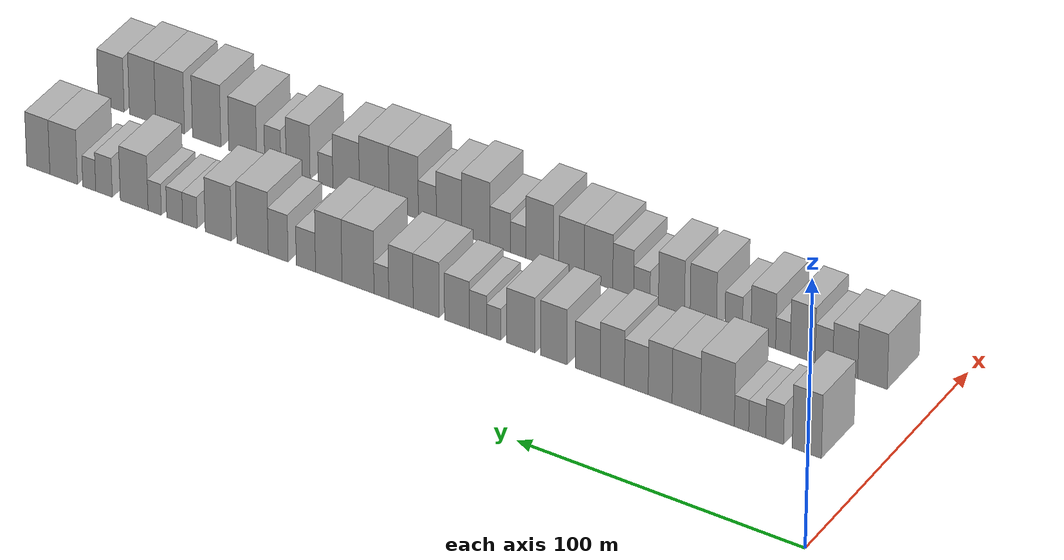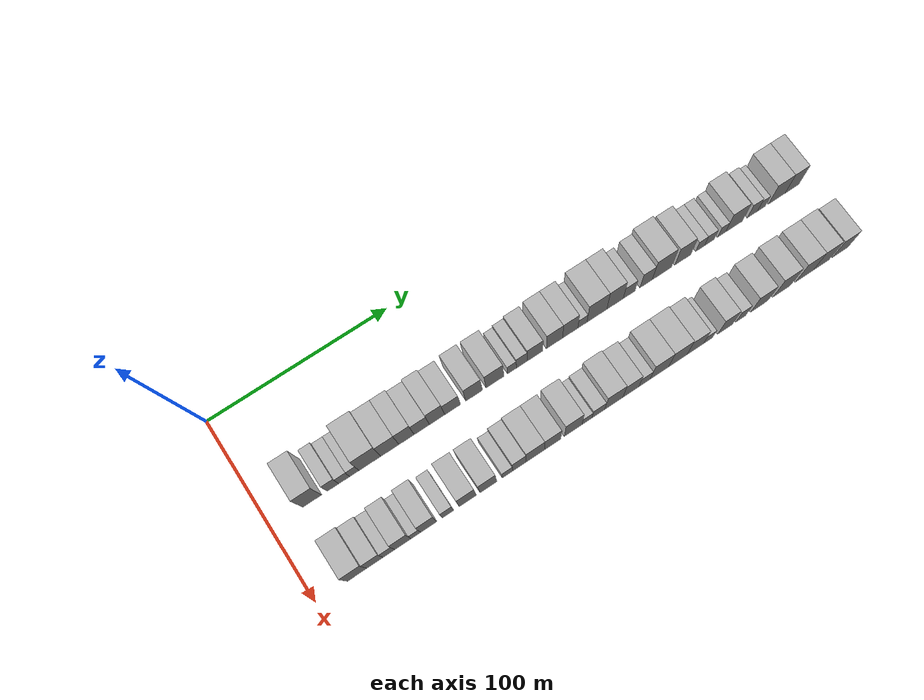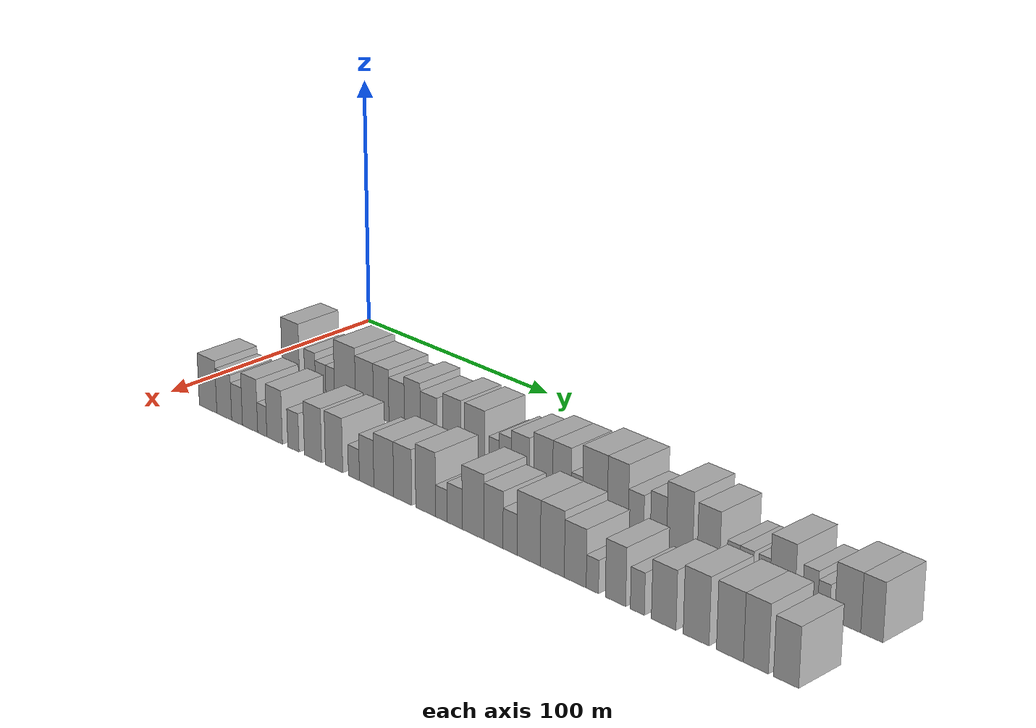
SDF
<sdf version="1.6">
 <world name="default">
  <model name="building_33">
   <static>1</static>
   <pose>50.0000 22.3238 0 0.000000 0.000000 0.000000</pose>
   <link name="link">
    <pose>0 0 12.00 0 0 0</pose>
    <collision name="collision"><geometry><box><size>20.0000 10.1171 24.0000</size></box></geometry></collision>
    <visual name="visual">
     <cast_shadows>0</cast_shadows>
     <geometry><box><size>20.0000 10.1171 24.0000</size></box></geometry>
     <material>
      <script>
       <uri>model://HANNAS_wall/materials/scripts</uri>
       <uri>model://HANNAS_wall/materials/textures</uri>
       <name>vrc/HANNAS_wall</name>
      </script>
     </material>
    </visual>
   </link>
  </model>
  <model name="building_34">
   <static>1</static>
   <pose>50.0000 33.4924 0 0.000000 0.000000 0.000000</pose>
   <link name="link">
    <pose>0 0 7.50 0 0 0</pose>
    <collision name="collision"><geometry><box><size>20.0000 6.2201 15.0000</size></box></geometry></collision>
    <visual name="visual">
     <cast_shadows>0</cast_shadows>
     <geometry><box><size>20.0000 6.2201 15.0000</size></box></geometry>
     <material>
      <script>
       <uri>model://HANNAS_wall/materials/scripts</uri>
       <uri>model://HANNAS_wall/materials/textures</uri>
       <name>vrc/HANNAS_wall</name>
      </script>
     </material>
    </visual>
   </link>
  </model>
  <model name="building_35">
   <static>1</static>
   <pose>50.0000 39.5580 0 0.000000 0.000000 0.000000</pose>
   <link name="link">
    <pose>0 0 6.00 0 0 0</pose>
    <collision name="collision"><geometry><box><size>20.0000 5.9111 12.0000</size></box></geometry></collision>
    <visual name="visual">
     <cast_shadows>0</cast_shadows>
     <geometry><box><size>20.0000 5.9111 12.0000</size></box></geometry>
     <material>
      <script>
       <uri>model://HANNAS_wall/materials/scripts</uri>
       <uri>model://HANNAS_wall/materials/textures</uri>
       <name>vrc/HANNAS_wall</name>
      </script>
     </material>
    </visual>
   </link>
  </model>
  <model name="building_36">
   <static>1</static>
   <pose>50.0000 45.0231 0 0.000000 0.000000 0.000000</pose>
   <link name="link">
    <pose>0 0 6.00 0 0 0</pose>
    <collision name="collision"><geometry><box><size>20.0000 5.0190 12.0000</size></box></geometry></collision>
    <visual name="visual">
     <cast_shadows>0</cast_shadows>
     <geometry><box><size>20.0000 5.0190 12.0000</size></box></geometry>
     <material>
      <script>
       <uri>model://HANNAS_wall/materials/scripts</uri>
       <uri>model://HANNAS_wall/materials/textures</uri>
       <name>vrc/HANNAS_wall</name>
      </script>
     </material>
    </visual>
   </link>
  </model>
  <model name="building_37">
   <static>1</static>
   <pose>50.0000 53.4516 0 0.000000 0.000000 0.000000</pose>
   <link name="link">
    <pose>0 0 12.00 0 0 0</pose>
    <collision name="collision"><geometry><box><size>20.0000 11.8379 24.0000</size></box></geometry></collision>
    <visual name="visual">
     <cast_shadows>0</cast_shadows>
     <geometry><box><size>20.0000 11.8379 24.0000</size></box></geometry>
     <material>
      <script>
       <uri>model://HANNAS_wall/materials/scripts</uri>
       <uri>model://HANNAS_wall/materials/textures</uri>
       <name>vrc/HANNAS_wall</name>
      </script>
     </material>
    </visual>
   </link>
  </model>
  <model name="building_38">
   <static>1</static>
   <pose>50.0000 64.3555 0 0.000000 0.000000 0.000000</pose>
   <link name="link">
    <pose>0 0 10.50 0 0 0</pose>
    <collision name="collision"><geometry><box><size>20.0000 9.9698 21.0000</size></box></geometry></collision>
    <visual name="visual">
     <cast_shadows>0</cast_shadows>
     <geometry><box><size>20.0000 9.9698 21.0000</size></box></geometry>
     <material>
      <script>
       <uri>model://HANNAS_wall/materials/scripts</uri>
       <uri>model://HANNAS_wall/materials/textures</uri>
       <name>vrc/HANNAS_wall</name>
      </script>
     </material>
    </visual>
   </link>
  </model>
  <model name="building_39">
   <static>1</static>
   <pose>50.0000 73.5436 0 0.000000 0.000000 0.000000</pose>
   <link name="link">
    <pose>0 0 10.50 0 0 0</pose>
    <collision name="collision"><geometry><box><size>20.0000 8.4065 21.0000</size></box></geometry></collision>
    <visual name="visual">
     <cast_shadows>0</cast_shadows>
     <geometry><box><size>20.0000 8.4065 21.0000</size></box></geometry>
     <material>
      <script>
       <uri>model://HANNAS_wall/materials/scripts</uri>
       <uri>model://HANNAS_wall/materials/textures</uri>
       <name>vrc/HANNAS_wall</name>
      </script>
     </material>
    </visual>
   </link>
  </model>
  <model name="building_40">
   <static>1</static>
   <pose>50.0000 81.9628 0 0.000000 0.000000 0.000000</pose>
   <link name="link">
    <pose>0 0 9.00 0 0 0</pose>
    <collision name="collision"><geometry><box><size>20.0000 8.4319 18.0000</size></box></geometry></collision>
    <visual name="visual">
     <cast_shadows>0</cast_shadows>
     <geometry><box><size>20.0000 8.4319 18.0000</size></box></geometry>
     <material>
      <script>
       <uri>model://HANNAS_wall/materials/scripts</uri>
       <uri>model://HANNAS_wall/materials/textures</uri>
       <name>vrc/HANNAS_wall</name>
      </script>
     </material>
    </visual>
   </link>
  </model>
  <model name="building_41">
   <static>1</static>
   <pose>50.0000 90.4274 0 0.000000 0.000000 0.000000</pose>
   <link name="link">
    <pose>0 0 10.50 0 0 0</pose>
    <collision name="collision"><geometry><box><size>20.0000 8.4972 21.0000</size></box></geometry></collision>
    <visual name="visual">
     <cast_shadows>0</cast_shadows>
     <geometry><box><size>20.0000 8.4972 21.0000</size></box></geometry>
     <material>
      <script>
       <uri>model://HANNAS_wall/materials/scripts</uri>
       <uri>model://HANNAS_wall/materials/textures</uri>
       <name>vrc/HANNAS_wall</name>
      </script>
     </material>
    </visual>
   </link>
  </model>
  <model name="building_42">
   <static>1</static>
   <pose>50.0000 99.1156 0 0.000000 0.000000 0.000000</pose>
   <link name="link">
    <pose>0 0 9.00 0 0 0</pose>
    <collision name="collision"><geometry><box><size>20.0000 8.8792 18.0000</size></box></geometry></collision>
    <visual name="visual">
     <cast_shadows>0</cast_shadows>
     <geometry><box><size>20.0000 8.8792 18.0000</size></box></geometry>
     <material>
      <script>
       <uri>model://HANNAS_wall/materials/scripts</uri>
       <uri>model://HANNAS_wall/materials/textures</uri>
       <name>vrc/HANNAS_wall</name>
      </script>
     </material>
    </visual>
   </link>
  </model>
  <model name="building_43">
   <static>1</static>
   <pose>50.0000 111.2433 0 0.000000 0.000000 0.000000</pose>
   <link name="link">
    <pose>0 0 10.50 0 0 0</pose>
    <collision name="collision"><geometry><box><size>20.0000 9.3763 21.0000</size></box></geometry></collision>
    <visual name="visual">
     <cast_shadows>0</cast_shadows>
     <geometry><box><size>20.0000 9.3763 21.0000</size></box></geometry>
     <material>
      <script>
       <uri>model://HANNAS_wall/materials/scripts</uri>
       <uri>model://HANNAS_wall/materials/textures</uri>
       <name>vrc/HANNAS_wall</name>
      </script>
     </material>
    </visual>
   </link>
  </model>
  <model name="building_44">
   <static>1</static>
   <pose>50.0000 123.0411 0 0.000000 0.000000 0.000000</pose>
   <link name="link">
    <pose>0 0 10.50 0 0 0</pose>
    <collision name="collision"><geometry><box><size>20.0000 10.2192 21.0000</size></box></geometry></collision>
    <visual name="visual">
     <cast_shadows>0</cast_shadows>
     <geometry><box><size>20.0000 10.2192 21.0000</size></box></geometry>
     <material>
      <script>
       <uri>model://HANNAS_wall/materials/scripts</uri>
       <uri>model://HANNAS_wall/materials/textures</uri>
       <name>vrc/HANNAS_wall</name>
      </script>
     </material>
    </visual>
   </link>
  </model>
  <model name="building_45">
   <static>1</static>
   <pose>50.0000 132.7010 0 0.000000 0.000000 0.000000</pose>
   <link name="link">
    <pose>0 0 6.00 0 0 0</pose>
    <collision name="collision"><geometry><box><size>20.0000 5.1006 12.0000</size></box></geometry></collision>
    <visual name="visual">
     <cast_shadows>0</cast_shadows>
     <geometry><box><size>20.0000 5.1006 12.0000</size></box></geometry>
     <material>
      <script>
       <uri>model://HANNAS_wall/materials/scripts</uri>
       <uri>model://HANNAS_wall/materials/textures</uri>
       <name>vrc/HANNAS_wall</name>
      </script>
     </material>
    </visual>
   </link>
  </model>
  <model name="building_46">
   <static>1</static>
   <pose>50.0000 138.3369 0 0.000000 0.000000 0.000000</pose>
   <link name="link">
    <pose>0 0 7.50 0 0 0</pose>
    <collision name="collision"><geometry><box><size>20.0000 6.1713 15.0000</size></box></geometry></collision>
    <visual name="visual">
     <cast_shadows>0</cast_shadows>
     <geometry><box><size>20.0000 6.1713 15.0000</size></box></geometry>
     <material>
      <script>
       <uri>model://HANNAS_wall/materials/scripts</uri>
       <uri>model://HANNAS_wall/materials/textures</uri>
       <name>vrc/HANNAS_wall</name>
      </script>
     </material>
    </visual>
   </link>
  </model>
  <model name="building_47">
   <static>1</static>
   <pose>50.0000 145.9093 0 0.000000 0.000000 0.000000</pose>
   <link name="link">
    <pose>0 0 9.00 0 0 0</pose>
    <collision name="collision"><geometry><box><size>20.0000 8.9736 18.0000</size></box></geometry></collision>
    <visual name="visual">
     <cast_shadows>0</cast_shadows>
     <geometry><box><size>20.0000 8.9736 18.0000</size></box></geometry>
     <material>
      <script>
       <uri>model://HANNAS_wall/materials/scripts</uri>
       <uri>model://HANNAS_wall/materials/textures</uri>
       <name>vrc/HANNAS_wall</name>
      </script>
     </material>
    </visual>
   </link>
  </model>
  <model name="building_48">
   <static>1</static>
   <pose>50.0000 157.0753 0 0.000000 0.000000 0.000000</pose>
   <link name="link">
    <pose>0 0 10.50 0 0 0</pose>
    <collision name="collision"><geometry><box><size>20.0000 9.3584 21.0000</size></box></geometry></collision>
    <visual name="visual">
     <cast_shadows>0</cast_shadows>
     <geometry><box><size>20.0000 9.3584 21.0000</size></box></geometry>
     <material>
      <script>
       <uri>model://HANNAS_wall/materials/scripts</uri>
       <uri>model://HANNAS_wall/materials/textures</uri>
       <name>vrc/HANNAS_wall</name>
      </script>
     </material>
    </visual>
   </link>
  </model>
  <model name="building_49">
   <static>1</static>
   <pose>50.0000 166.1852 0 0.000000 0.000000 0.000000</pose>
   <link name="link">
    <pose>0 0 10.50 0 0 0</pose>
    <collision name="collision"><geometry><box><size>20.0000 8.8613 21.0000</size></box></geometry></collision>
    <visual name="visual">
     <cast_shadows>0</cast_shadows>
     <geometry><box><size>20.0000 8.8613 21.0000</size></box></geometry>
     <material>
      <script>
       <uri>model://HANNAS_wall/materials/scripts</uri>
       <uri>model://HANNAS_wall/materials/textures</uri>
       <name>vrc/HANNAS_wall</name>
      </script>
     </material>
    </visual>
   </link>
  </model>
  <model name="building_50">
   <static>1</static>
   <pose>50.0000 173.2969 0 0.000000 0.000000 0.000000</pose>
   <link name="link">
    <pose>0 0 6.00 0 0 0</pose>
    <collision name="collision"><geometry><box><size>20.0000 5.3621 12.0000</size></box></geometry></collision>
    <visual name="visual">
     <cast_shadows>0</cast_shadows>
     <geometry><box><size>20.0000 5.3621 12.0000</size></box></geometry>
     <material>
      <script>
       <uri>model://HANNAS_wall/materials/scripts</uri>
       <uri>model://HANNAS_wall/materials/textures</uri>
       <name>vrc/HANNAS_wall</name>
      </script>
     </material>
    </visual>
   </link>
  </model>
  <model name="building_51">
   <static>1</static>
   <pose>50.0000 181.8073 0 0.000000 0.000000 0.000000</pose>
   <link name="link">
    <pose>0 0 12.00 0 0 0</pose>
    <collision name="collision"><geometry><box><size>20.0000 11.6588 24.0000</size></box></geometry></collision>
    <visual name="visual">
     <cast_shadows>0</cast_shadows>
     <geometry><box><size>20.0000 11.6588 24.0000</size></box></geometry>
     <material>
      <script>
       <uri>model://HANNAS_wall/materials/scripts</uri>
       <uri>model://HANNAS_wall/materials/textures</uri>
       <name>vrc/HANNAS_wall</name>
      </script>
     </material>
    </visual>
   </link>
  </model>
  <model name="building_52">
   <static>1</static>
   <pose>50.0000 192.4684 0 0.000000 0.000000 0.000000</pose>
   <link name="link">
    <pose>0 0 12.00 0 0 0</pose>
    <collision name="collision"><geometry><box><size>20.0000 9.6633 24.0000</size></box></geometry></collision>
    <visual name="visual">
     <cast_shadows>0</cast_shadows>
     <geometry><box><size>20.0000 9.6633 24.0000</size></box></geometry>
     <material>
      <script>
       <uri>model://HANNAS_wall/materials/scripts</uri>
       <uri>model://HANNAS_wall/materials/textures</uri>
       <name>vrc/HANNAS_wall</name>
      </script>
     </material>
    </visual>
   </link>
  </model>
  <model name="building_53">
   <static>1</static>
   <pose>50.0000 200.8308 0 0.000000 0.000000 0.000000</pose>
   <link name="link">
    <pose>0 0 7.50 0 0 0</pose>
    <collision name="collision"><geometry><box><size>20.0000 7.0615 15.0000</size></box></geometry></collision>
    <visual name="visual">
     <cast_shadows>0</cast_shadows>
     <geometry><box><size>20.0000 7.0615 15.0000</size></box></geometry>
     <material>
      <script>
       <uri>model://HANNAS_wall/materials/scripts</uri>
       <uri>model://HANNAS_wall/materials/textures</uri>
       <name>vrc/HANNAS_wall</name>
      </script>
     </material>
    </visual>
   </link>
  </model>
  <model name="building_54">
   <static>1</static>
   <pose>50.0000 210.9991 0 0.000000 0.000000 0.000000</pose>
   <link name="link">
    <pose>0 0 9.00 0 0 0</pose>
    <collision name="collision"><geometry><box><size>20.0000 7.2751 18.0000</size></box></geometry></collision>
    <visual name="visual">
     <cast_shadows>0</cast_shadows>
     <geometry><box><size>20.0000 7.2751 18.0000</size></box></geometry>
     <material>
      <script>
       <uri>model://HANNAS_wall/materials/scripts</uri>
       <uri>model://HANNAS_wall/materials/textures</uri>
       <name>vrc/HANNAS_wall</name>
      </script>
     </material>
    </visual>
   </link>
  </model>
  <model name="building_55">
   <static>1</static>
   <pose>50.0000 220.4315 0 0.000000 0.000000 0.000000</pose>
   <link name="link">
    <pose>0 0 12.00 0 0 0</pose>
    <collision name="collision"><geometry><box><size>20.0000 11.5898 24.0000</size></box></geometry></collision>
    <visual name="visual">
     <cast_shadows>0</cast_shadows>
     <geometry><box><size>20.0000 11.5898 24.0000</size></box></geometry>
     <material>
      <script>
       <uri>model://HANNAS_wall/materials/scripts</uri>
       <uri>model://HANNAS_wall/materials/textures</uri>
       <name>vrc/HANNAS_wall</name>
      </script>
     </material>
    </visual>
   </link>
  </model>
  <model name="building_56">
   <static>1</static>
   <pose>50.0000 233.0825 0 0.000000 0.000000 0.000000</pose>
   <link name="link">
    <pose>0 0 10.50 0 0 0</pose>
    <collision name="collision"><geometry><box><size>20.0000 9.7122 21.0000</size></box></geometry></collision>
    <visual name="visual">
     <cast_shadows>0</cast_shadows>
     <geometry><box><size>20.0000 9.7122 21.0000</size></box></geometry>
     <material>
      <script>
       <uri>model://HANNAS_wall/materials/scripts</uri>
       <uri>model://HANNAS_wall/materials/textures</uri>
       <name>vrc/HANNAS_wall</name>
      </script>
     </material>
    </visual>
   </link>
  </model>
  <model name="building_57">
   <static>1</static>
   <pose>50.0000 243.6332 0 0.000000 0.000000 0.000000</pose>
   <link name="link">
    <pose>0 0 6.00 0 0 0</pose>
    <collision name="collision"><geometry><box><size>20.0000 5.3892 12.0000</size></box></geometry></collision>
    <visual name="visual">
     <cast_shadows>0</cast_shadows>
     <geometry><box><size>20.0000 5.3892 12.0000</size></box></geometry>
     <material>
      <script>
       <uri>model://HANNAS_wall/materials/scripts</uri>
       <uri>model://HANNAS_wall/materials/textures</uri>
       <name>vrc/HANNAS_wall</name>
      </script>
     </material>
    </visual>
   </link>
  </model>
  <model name="building_58">
   <static>1</static>
   <pose>50.0000 249.2939 0 0.000000 0.000000 0.000000</pose>
   <link name="link">
    <pose>0 0 6.00 0 0 0</pose>
    <collision name="collision"><geometry><box><size>20.0000 5.9321 12.0000</size></box></geometry></collision>
    <visual name="visual">
     <cast_shadows>0</cast_shadows>
     <geometry><box><size>20.0000 5.9321 12.0000</size></box></geometry>
     <material>
      <script>
       <uri>model://HANNAS_wall/materials/scripts</uri>
       <uri>model://HANNAS_wall/materials/textures</uri>
       <name>vrc/HANNAS_wall</name>
      </script>
     </material>
    </visual>
   </link>
  </model>
  <model name="building_59">
   <static>1</static>
   <pose>50.0000 256.7350 0 0.000000 0.000000 0.000000</pose>
   <link name="link">
    <pose>0 0 6.00 0 0 0</pose>
    <collision name="collision"><geometry><box><size>20.0000 4.9502 12.0000</size></box></geometry></collision>
    <visual name="visual">
     <cast_shadows>0</cast_shadows>
     <geometry><box><size>20.0000 4.9502 12.0000</size></box></geometry>
     <material>
      <script>
       <uri>model://HANNAS_wall/materials/scripts</uri>
       <uri>model://HANNAS_wall/materials/textures</uri>
       <name>vrc/HANNAS_wall</name>
      </script>
     </material>
    </visual>
   </link>
  </model>
  <model name="building_60">
   <static>1</static>
   <pose>50.0000 264.3996 0 0.000000 0.000000 0.000000</pose>
   <link name="link">
    <pose>0 0 10.50 0 0 0</pose>
    <collision name="collision"><geometry><box><size>20.0000 10.3790 21.0000</size></box></geometry></collision>
    <visual name="visual">
     <cast_shadows>0</cast_shadows>
     <geometry><box><size>20.0000 10.3790 21.0000</size></box></geometry>
     <material>
      <script>
       <uri>model://HANNAS_wall/materials/scripts</uri>
       <uri>model://HANNAS_wall/materials/textures</uri>
       <name>vrc/HANNAS_wall</name>
      </script>
     </material>
    </visual>
   </link>
  </model>
  <model name="building_61">
   <static>1</static>
   <pose>50.0000 275.6961 0 0.000000 0.000000 0.000000</pose>
   <link name="link">
    <pose>0 0 7.50 0 0 0</pose>
    <collision name="collision"><geometry><box><size>20.0000 6.2138 15.0000</size></box></geometry></collision>
    <visual name="visual">
     <cast_shadows>0</cast_shadows>
     <geometry><box><size>20.0000 6.2138 15.0000</size></box></geometry>
     <material>
      <script>
       <uri>model://HANNAS_wall/materials/scripts</uri>
       <uri>model://HANNAS_wall/materials/textures</uri>
       <name>vrc/HANNAS_wall</name>
      </script>
     </material>
    </visual>
   </link>
  </model>
  <model name="building_62">
   <static>1</static>
   <pose>50.0000 281.2378 0 0.000000 0.000000 0.000000</pose>
   <link name="link">
    <pose>0 0 6.00 0 0 0</pose>
    <collision name="collision"><geometry><box><size>20.0000 4.8697 12.0000</size></box></geometry></collision>
    <visual name="visual">
     <cast_shadows>0</cast_shadows>
     <geometry><box><size>20.0000 4.8697 12.0000</size></box></geometry>
     <material>
      <script>
       <uri>model://HANNAS_wall/materials/scripts</uri>
       <uri>model://HANNAS_wall/materials/textures</uri>
       <name>vrc/HANNAS_wall</name>
      </script>
     </material>
    </visual>
   </link>
  </model>
  <model name="building_63">
   <static>1</static>
   <pose>50.0000 290.8701 0 0.000000 0.000000 0.000000</pose>
   <link name="link">
    <pose>0 0 10.50 0 0 0</pose>
    <collision name="collision"><geometry><box><size>20.0000 10.3950 21.0000</size></box></geometry></collision>
    <visual name="visual">
     <cast_shadows>0</cast_shadows>
     <geometry><box><size>20.0000 10.3950 21.0000</size></box></geometry>
     <material>
      <script>
       <uri>model://HANNAS_wall/materials/scripts</uri>
       <uri>model://HANNAS_wall/materials/textures</uri>
       <name>vrc/HANNAS_wall</name>
      </script>
     </material>
    </visual>
   </link>
  </model>
  <model name="building_64">
   <static>1</static>
   <pose>50.0000 300.4305 0 0.000000 0.000000 0.000000</pose>
   <link name="link">
    <pose>0 0 10.50 0 0 0</pose>
    <collision name="collision"><geometry><box><size>20.0000 8.7257 21.0000</size></box></geometry></collision>
    <visual name="visual">
     <cast_shadows>0</cast_shadows>
     <geometry><box><size>20.0000 8.7257 21.0000</size></box></geometry>
     <material>
      <script>
       <uri>model://HANNAS_wall/materials/scripts</uri>
       <uri>model://HANNAS_wall/materials/textures</uri>
       <name>vrc/HANNAS_wall</name>
      </script>
     </material>
    </visual>
   </link>
  </model>
  <model name="building_94">
   <static>1</static>
   <pose>90.0000 22.1543 0 0.000000 0.000000 0.000000</pose>
   <link name="link">
    <pose>0 0 10.50 0 0 0</pose>
    <collision name="collision"><geometry><box><size>20.0000 10.3219 21.0000</size></box></geometry></collision>
    <visual name="visual">
     <cast_shadows>0</cast_shadows>
     <geometry><box><size>20.0000 10.3219 21.0000</size></box></geometry>
     <material>
      <script>
       <uri>model://HANNAS_wall/materials/scripts</uri>
       <uri>model://HANNAS_wall/materials/textures</uri>
       <name>vrc/HANNAS_wall</name>
      </script>
     </material>
    </visual>
   </link>
  </model>
  <model name="building_95">
   <static>1</static>
   <pose>90.0000 31.6559 0 0.000000 0.000000 0.000000</pose>
   <link name="link">
    <pose>0 0 9.00 0 0 0</pose>
    <collision name="collision"><geometry><box><size>20.0000 8.6814 18.0000</size></box></geometry></collision>
    <visual name="visual">
     <cast_shadows>0</cast_shadows>
     <geometry><box><size>20.0000 8.6814 18.0000</size></box></geometry>
     <material>
      <script>
       <uri>model://HANNAS_wall/materials/scripts</uri>
       <uri>model://HANNAS_wall/materials/textures</uri>
       <name>vrc/HANNAS_wall</name>
      </script>
     </material>
    </visual>
   </link>
  </model>
  <model name="building_96">
   <static>1</static>
   <pose>90.0000 39.1072 0 0.000000 0.000000 0.000000</pose>
   <link name="link">
    <pose>0 0 7.50 0 0 0</pose>
    <collision name="collision"><geometry><box><size>20.0000 6.2211 15.0000</size></box></geometry></collision>
    <visual name="visual">
     <cast_shadows>0</cast_shadows>
     <geometry><box><size>20.0000 6.2211 15.0000</size></box></geometry>
     <material>
      <script>
       <uri>model://HANNAS_wall/materials/scripts</uri>
       <uri>model://HANNAS_wall/materials/textures</uri>
       <name>vrc/HANNAS_wall</name>
      </script>
     </material>
    </visual>
   </link>
  </model>
  <model name="building_97">
   <static>1</static>
   <pose>90.0000 46.5713 0 0.000000 0.000000 0.000000</pose>
   <link name="link">
    <pose>0 0 10.50 0 0 0</pose>
    <collision name="collision"><geometry><box><size>20.0000 8.7071 21.0000</size></box></geometry></collision>
    <visual name="visual">
     <cast_shadows>0</cast_shadows>
     <geometry><box><size>20.0000 8.7071 21.0000</size></box></geometry>
     <material>
      <script>
       <uri>model://HANNAS_wall/materials/scripts</uri>
       <uri>model://HANNAS_wall/materials/textures</uri>
       <name>vrc/HANNAS_wall</name>
      </script>
     </material>
    </visual>
   </link>
  </model>
  <model name="building_98">
   <static>1</static>
   <pose>90.0000 53.5038 0 0.000000 0.000000 0.000000</pose>
   <link name="link">
    <pose>0 0 6.00 0 0 0</pose>
    <collision name="collision"><geometry><box><size>20.0000 5.1580 12.0000</size></box></geometry></collision>
    <visual name="visual">
     <cast_shadows>0</cast_shadows>
     <geometry><box><size>20.0000 5.1580 12.0000</size></box></geometry>
     <material>
      <script>
       <uri>model://HANNAS_wall/materials/scripts</uri>
       <uri>model://HANNAS_wall/materials/textures</uri>
       <name>vrc/HANNAS_wall</name>
      </script>
     </material>
    </visual>
   </link>
  </model>
  <model name="building_99">
   <static>1</static>
   <pose>90.0000 60.4546 0 0.000000 0.000000 0.000000</pose>
   <link name="link">
    <pose>0 0 10.50 0 0 0</pose>
    <collision name="collision"><geometry><box><size>20.0000 8.7435 21.0000</size></box></geometry></collision>
    <visual name="visual">
     <cast_shadows>0</cast_shadows>
     <geometry><box><size>20.0000 8.7435 21.0000</size></box></geometry>
     <material>
      <script>
       <uri>model://HANNAS_wall/materials/scripts</uri>
       <uri>model://HANNAS_wall/materials/textures</uri>
       <name>vrc/HANNAS_wall</name>
      </script>
     </material>
    </visual>
   </link>
  </model>
  <model name="building_100">
   <static>1</static>
   <pose>90.0000 70.9182 0 0.000000 0.000000 0.000000</pose>
   <link name="link">
    <pose>0 0 7.50 0 0 0</pose>
    <collision name="collision"><geometry><box><size>20.0000 6.1838 15.0000</size></box></geometry></collision>
    <visual name="visual">
     <cast_shadows>0</cast_shadows>
     <geometry><box><size>20.0000 6.1838 15.0000</size></box></geometry>
     <material>
      <script>
       <uri>model://HANNAS_wall/materials/scripts</uri>
       <uri>model://HANNAS_wall/materials/textures</uri>
       <name>vrc/HANNAS_wall</name>
      </script>
     </material>
    </visual>
   </link>
  </model>
  <model name="building_101">
   <static>1</static>
   <pose>90.0000 81.7012 0 0.000000 0.000000 0.000000</pose>
   <link name="link">
    <pose>0 0 10.50 0 0 0</pose>
    <collision name="collision"><geometry><box><size>20.0000 9.3822 21.0000</size></box></geometry></collision>
    <visual name="visual">
     <cast_shadows>0</cast_shadows>
     <geometry><box><size>20.0000 9.3822 21.0000</size></box></geometry>
     <material>
      <script>
       <uri>model://HANNAS_wall/materials/scripts</uri>
       <uri>model://HANNAS_wall/materials/textures</uri>
       <name>vrc/HANNAS_wall</name>
      </script>
     </material>
    </visual>
   </link>
  </model>
  <model name="building_102">
   <static>1</static>
   <pose>90.0000 93.0351 0 0.000000 0.000000 0.000000</pose>
   <link name="link">
    <pose>0 0 10.50 0 0 0</pose>
    <collision name="collision"><geometry><box><size>20.0000 9.2855 21.0000</size></box></geometry></collision>
    <visual name="visual">
     <cast_shadows>0</cast_shadows>
     <geometry><box><size>20.0000 9.2855 21.0000</size></box></geometry>
     <material>
      <script>
       <uri>model://HANNAS_wall/materials/scripts</uri>
       <uri>model://HANNAS_wall/materials/textures</uri>
       <name>vrc/HANNAS_wall</name>
      </script>
     </material>
    </visual>
   </link>
  </model>
  <model name="building_103">
   <static>1</static>
   <pose>90.0000 103.5858 0 0.000000 0.000000 0.000000</pose>
   <link name="link">
    <pose>0 0 6.00 0 0 0</pose>
    <collision name="collision"><geometry><box><size>20.0000 5.8159 12.0000</size></box></geometry></collision>
    <visual name="visual">
     <cast_shadows>0</cast_shadows>
     <geometry><box><size>20.0000 5.8159 12.0000</size></box></geometry>
     <material>
      <script>
       <uri>model://HANNAS_wall/materials/scripts</uri>
       <uri>model://HANNAS_wall/materials/textures</uri>
       <name>vrc/HANNAS_wall</name>
      </script>
     </material>
    </visual>
   </link>
  </model>
  <model name="building_104">
   <static>1</static>
   <pose>90.0000 110.2608 0 0.000000 0.000000 0.000000</pose>
   <link name="link">
    <pose>0 0 9.00 0 0 0</pose>
    <collision name="collision"><geometry><box><size>20.0000 7.5341 18.0000</size></box></geometry></collision>
    <visual name="visual">
     <cast_shadows>0</cast_shadows>
     <geometry><box><size>20.0000 7.5341 18.0000</size></box></geometry>
     <material>
      <script>
       <uri>model://HANNAS_wall/materials/scripts</uri>
       <uri>model://HANNAS_wall/materials/textures</uri>
       <name>vrc/HANNAS_wall</name>
      </script>
     </material>
    </visual>
   </link>
  </model>
  <model name="building_105">
   <static>1</static>
   <pose>90.0000 119.1474 0 0.000000 0.000000 0.000000</pose>
   <link name="link">
    <pose>0 0 10.50 0 0 0</pose>
    <collision name="collision"><geometry><box><size>20.0000 10.2391 21.0000</size></box></geometry></collision>
    <visual name="visual">
     <cast_shadows>0</cast_shadows>
     <geometry><box><size>20.0000 10.2391 21.0000</size></box></geometry>
     <material>
      <script>
       <uri>model://HANNAS_wall/materials/scripts</uri>
       <uri>model://HANNAS_wall/materials/textures</uri>
       <name>vrc/HANNAS_wall</name>
      </script>
     </material>
    </visual>
   </link>
  </model>
  <model name="building_106">
   <static>1</static>
   <pose>90.0000 128.8539 0 0.000000 0.000000 0.000000</pose>
   <link name="link">
    <pose>0 0 10.50 0 0 0</pose>
    <collision name="collision"><geometry><box><size>20.0000 9.1737 21.0000</size></box></geometry></collision>
    <visual name="visual">
     <cast_shadows>0</cast_shadows>
     <geometry><box><size>20.0000 9.1737 21.0000</size></box></geometry>
     <material>
      <script>
       <uri>model://HANNAS_wall/materials/scripts</uri>
       <uri>model://HANNAS_wall/materials/textures</uri>
       <name>vrc/HANNAS_wall</name>
      </script>
     </material>
    </visual>
   </link>
  </model>
  <model name="building_107">
   <static>1</static>
   <pose>90.0000 140.4076 0 0.000000 0.000000 0.000000</pose>
   <link name="link">
    <pose>0 0 12.00 0 0 0</pose>
    <collision name="collision"><geometry><box><size>20.0000 9.9339 24.0000</size></box></geometry></collision>
    <visual name="visual">
     <cast_shadows>0</cast_shadows>
     <geometry><box><size>20.0000 9.9339 24.0000</size></box></geometry>
     <material>
      <script>
       <uri>model://HANNAS_wall/materials/scripts</uri>
       <uri>model://HANNAS_wall/materials/textures</uri>
       <name>vrc/HANNAS_wall</name>
      </script>
     </material>
    </visual>
   </link>
  </model>
  <model name="building_108">
   <static>1</static>
   <pose>90.0000 148.2240 0 0.000000 0.000000 0.000000</pose>
   <link name="link">
    <pose>0 0 6.00 0 0 0</pose>
    <collision name="collision"><geometry><box><size>20.0000 5.6988 12.0000</size></box></geometry></collision>
    <visual name="visual">
     <cast_shadows>0</cast_shadows>
     <geometry><box><size>20.0000 5.6988 12.0000</size></box></geometry>
     <material>
      <script>
       <uri>model://HANNAS_wall/materials/scripts</uri>
       <uri>model://HANNAS_wall/materials/textures</uri>
       <name>vrc/HANNAS_wall</name>
      </script>
     </material>
    </visual>
   </link>
  </model>
  <model name="building_109">
   <static>1</static>
   <pose>90.0000 154.7300 0 0.000000 0.000000 0.000000</pose>
   <link name="link">
    <pose>0 0 7.50 0 0 0</pose>
    <collision name="collision"><geometry><box><size>20.0000 7.3132 15.0000</size></box></geometry></collision>
    <visual name="visual">
     <cast_shadows>0</cast_shadows>
     <geometry><box><size>20.0000 7.3132 15.0000</size></box></geometry>
     <material>
      <script>
       <uri>model://HANNAS_wall/materials/scripts</uri>
       <uri>model://HANNAS_wall/materials/textures</uri>
       <name>vrc/HANNAS_wall</name>
      </script>
     </material>
    </visual>
   </link>
  </model>
  <model name="building_110">
   <static>1</static>
   <pose>90.0000 163.5996 0 0.000000 0.000000 0.000000</pose>
   <link name="link">
    <pose>0 0 12.00 0 0 0</pose>
    <collision name="collision"><geometry><box><size>20.0000 10.4261 24.0000</size></box></geometry></collision>
    <visual name="visual">
     <cast_shadows>0</cast_shadows>
     <geometry><box><size>20.0000 10.4261 24.0000</size></box></geometry>
     <material>
      <script>
       <uri>model://HANNAS_wall/materials/scripts</uri>
       <uri>model://HANNAS_wall/materials/textures</uri>
       <name>vrc/HANNAS_wall</name>
      </script>
     </material>
    </visual>
   </link>
  </model>
  <model name="building_111">
   <static>1</static>
   <pose>90.0000 173.4190 0 0.000000 0.000000 0.000000</pose>
   <link name="link">
    <pose>0 0 10.50 0 0 0</pose>
    <collision name="collision"><geometry><box><size>20.0000 9.2127 21.0000</size></box></geometry></collision>
    <visual name="visual">
     <cast_shadows>0</cast_shadows>
     <geometry><box><size>20.0000 9.2127 21.0000</size></box></geometry>
     <material>
      <script>
       <uri>model://HANNAS_wall/materials/scripts</uri>
       <uri>model://HANNAS_wall/materials/textures</uri>
       <name>vrc/HANNAS_wall</name>
      </script>
     </material>
    </visual>
   </link>
  </model>
  <model name="building_112">
   <static>1</static>
   <pose>90.0000 181.3299 0 0.000000 0.000000 0.000000</pose>
   <link name="link">
    <pose>0 0 7.50 0 0 0</pose>
    <collision name="collision"><geometry><box><size>20.0000 6.6089 15.0000</size></box></geometry></collision>
    <visual name="visual">
     <cast_shadows>0</cast_shadows>
     <geometry><box><size>20.0000 6.6089 15.0000</size></box></geometry>
     <material>
      <script>
       <uri>model://HANNAS_wall/materials/scripts</uri>
       <uri>model://HANNAS_wall/materials/textures</uri>
       <name>vrc/HANNAS_wall</name>
      </script>
     </material>
    </visual>
   </link>
  </model>
  <model name="building_113">
   <static>1</static>
   <pose>90.0000 190.0261 0 0.000000 0.000000 0.000000</pose>
   <link name="link">
    <pose>0 0 12.00 0 0 0</pose>
    <collision name="collision"><geometry><box><size>20.0000 10.7835 24.0000</size></box></geometry></collision>
    <visual name="visual">
     <cast_shadows>0</cast_shadows>
     <geometry><box><size>20.0000 10.7835 24.0000</size></box></geometry>
     <material>
      <script>
       <uri>model://HANNAS_wall/materials/scripts</uri>
       <uri>model://HANNAS_wall/materials/textures</uri>
       <name>vrc/HANNAS_wall</name>
      </script>
     </material>
    </visual>
   </link>
  </model>
  <model name="building_114">
   <static>1</static>
   <pose>90.0000 200.8704 0 0.000000 0.000000 0.000000</pose>
   <link name="link">
    <pose>0 0 12.00 0 0 0</pose>
    <collision name="collision"><geometry><box><size>20.0000 10.9053 24.0000</size></box></geometry></collision>
    <visual name="visual">
     <cast_shadows>0</cast_shadows>
     <geometry><box><size>20.0000 10.9053 24.0000</size></box></geometry>
     <material>
      <script>
       <uri>model://HANNAS_wall/materials/scripts</uri>
       <uri>model://HANNAS_wall/materials/textures</uri>
       <name>vrc/HANNAS_wall</name>
      </script>
     </material>
    </visual>
   </link>
  </model>
  <model name="building_115">
   <static>1</static>
   <pose>90.0000 211.2293 0 0.000000 0.000000 0.000000</pose>
   <link name="link">
    <pose>0 0 10.50 0 0 0</pose>
    <collision name="collision"><geometry><box><size>20.0000 9.8126 21.0000</size></box></geometry></collision>
    <visual name="visual">
     <cast_shadows>0</cast_shadows>
     <geometry><box><size>20.0000 9.8126 21.0000</size></box></geometry>
     <material>
      <script>
       <uri>model://HANNAS_wall/materials/scripts</uri>
       <uri>model://HANNAS_wall/materials/textures</uri>
       <name>vrc/HANNAS_wall</name>
      </script>
     </material>
    </visual>
   </link>
  </model>
  <model name="building_116">
   <static>1</static>
   <pose>90.0000 218.8627 0 0.000000 0.000000 0.000000</pose>
   <link name="link">
    <pose>0 0 6.00 0 0 0</pose>
    <collision name="collision"><geometry><box><size>20.0000 5.4541 12.0000</size></box></geometry></collision>
    <visual name="visual">
     <cast_shadows>0</cast_shadows>
     <geometry><box><size>20.0000 5.4541 12.0000</size></box></geometry>
     <material>
      <script>
       <uri>model://HANNAS_wall/materials/scripts</uri>
       <uri>model://HANNAS_wall/materials/textures</uri>
       <name>vrc/HANNAS_wall</name>
      </script>
     </material>
    </visual>
   </link>
  </model>
  <model name="building_117">
   <static>1</static>
   <pose>90.0000 229.0365 0 0.000000 0.000000 0.000000</pose>
   <link name="link">
    <pose>0 0 10.50 0 0 0</pose>
    <collision name="collision"><geometry><box><size>20.0000 8.8935 21.0000</size></box></geometry></collision>
    <visual name="visual">
     <cast_shadows>0</cast_shadows>
     <geometry><box><size>20.0000 8.8935 21.0000</size></box></geometry>
     <material>
      <script>
       <uri>model://HANNAS_wall/materials/scripts</uri>
       <uri>model://HANNAS_wall/materials/textures</uri>
       <name>vrc/HANNAS_wall</name>
      </script>
     </material>
    </visual>
   </link>
  </model>
  <model name="building_118">
   <static>1</static>
   <pose>90.0000 238.4951 0 0.000000 0.000000 0.000000</pose>
   <link name="link">
    <pose>0 0 7.50 0 0 0</pose>
    <collision name="collision"><geometry><box><size>20.0000 6.0237 15.0000</size></box></geometry></collision>
    <visual name="visual">
     <cast_shadows>0</cast_shadows>
     <geometry><box><size>20.0000 6.0237 15.0000</size></box></geometry>
     <material>
      <script>
       <uri>model://HANNAS_wall/materials/scripts</uri>
       <uri>model://HANNAS_wall/materials/textures</uri>
       <name>vrc/HANNAS_wall</name>
      </script>
     </material>
    </visual>
   </link>
  </model>
  <model name="building_119">
   <static>1</static>
   <pose>90.0000 249.7016 0 0.000000 0.000000 0.000000</pose>
   <link name="link">
    <pose>0 0 10.50 0 0 0</pose>
    <collision name="collision"><geometry><box><size>20.0000 10.3893 21.0000</size></box></geometry></collision>
    <visual name="visual">
     <cast_shadows>0</cast_shadows>
     <geometry><box><size>20.0000 10.3893 21.0000</size></box></geometry>
     <material>
      <script>
       <uri>model://HANNAS_wall/materials/scripts</uri>
       <uri>model://HANNAS_wall/materials/textures</uri>
       <name>vrc/HANNAS_wall</name>
      </script>
     </material>
    </visual>
   </link>
  </model>
  <model name="building_120">
   <static>1</static>
   <pose>90.0000 263.2394 0 0.000000 0.000000 0.000000</pose>
   <link name="link">
    <pose>0 0 12.00 0 0 0</pose>
    <collision name="collision"><geometry><box><size>20.0000 10.6863 24.0000</size></box></geometry></collision>
    <visual name="visual">
     <cast_shadows>0</cast_shadows>
     <geometry><box><size>20.0000 10.6863 24.0000</size></box></geometry>
     <material>
      <script>
       <uri>model://HANNAS_wall/materials/scripts</uri>
       <uri>model://HANNAS_wall/materials/textures</uri>
       <name>vrc/HANNAS_wall</name>
      </script>
     </material>
    </visual>
   </link>
  </model>
  <model name="building_121">
   <static>1</static>
   <pose>90.0000 277.0392 0 0.000000 0.000000 0.000000</pose>
   <link name="link">
    <pose>0 0 12.00 0 0 0</pose>
    <collision name="collision"><geometry><box><size>20.0000 10.9135 24.0000</size></box></geometry></collision>
    <visual name="visual">
     <cast_shadows>0</cast_shadows>
     <geometry><box><size>20.0000 10.9135 24.0000</size></box></geometry>
     <material>
      <script>
       <uri>model://HANNAS_wall/materials/scripts</uri>
       <uri>model://HANNAS_wall/materials/textures</uri>
       <name>vrc/HANNAS_wall</name>
      </script>
     </material>
    </visual>
   </link>
  </model>
  <model name="building_122">
   <static>1</static>
   <pose>90.0000 287.4589 0 0.000000 0.000000 0.000000</pose>
   <link name="link">
    <pose>0 0 12.00 0 0 0</pose>
    <collision name="collision"><geometry><box><size>20.0000 9.9258 24.0000</size></box></geometry></collision>
    <visual name="visual">
     <cast_shadows>0</cast_shadows>
     <geometry><box><size>20.0000 9.9258 24.0000</size></box></geometry>
     <material>
      <script>
       <uri>model://HANNAS_wall/materials/scripts</uri>
       <uri>model://HANNAS_wall/materials/textures</uri>
       <name>vrc/HANNAS_wall</name>
      </script>
     </material>
    </visual>
   </link>
  </model>
  <model name="building_123">
   <static>1</static>
   <pose>90.0000 299.3377 0 0.000000 0.000000 0.000000</pose>
   <link name="link">
    <pose>0 0 10.50 0 0 0</pose>
    <collision name="collision"><geometry><box><size>20.0000 9.8318 21.0000</size></box></geometry></collision>
    <visual name="visual">
     <cast_shadows>0</cast_shadows>
     <geometry><box><size>20.0000 9.8318 21.0000</size></box></geometry>
     <material>
      <script>
       <uri>model://HANNAS_wall/materials/scripts</uri>
       <uri>model://HANNAS_wall/materials/textures</uri>
       <name>vrc/HANNAS_wall</name>
      </script>
     </material>
    </visual>
   </link>
  </model>
 </world>
</sdf>
